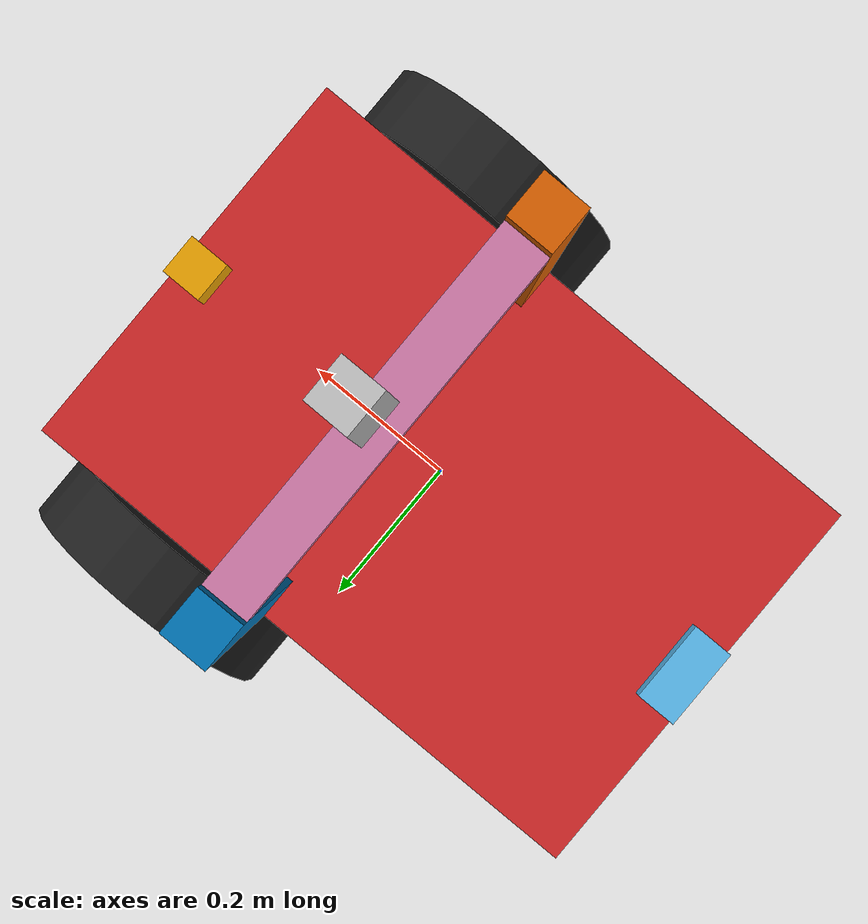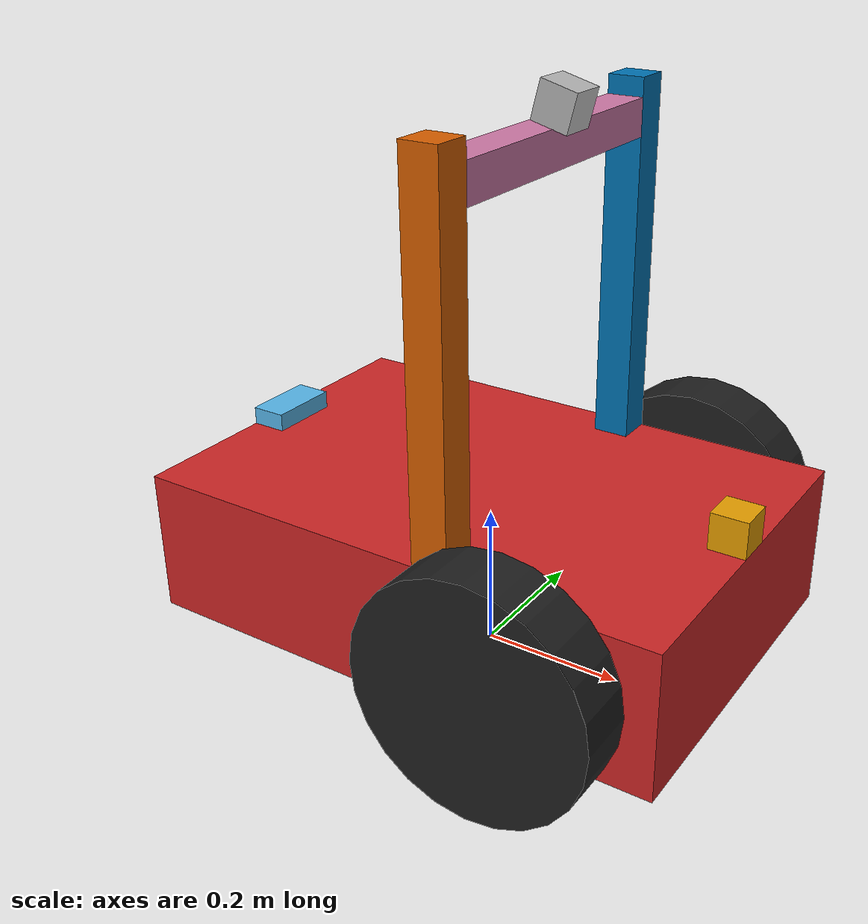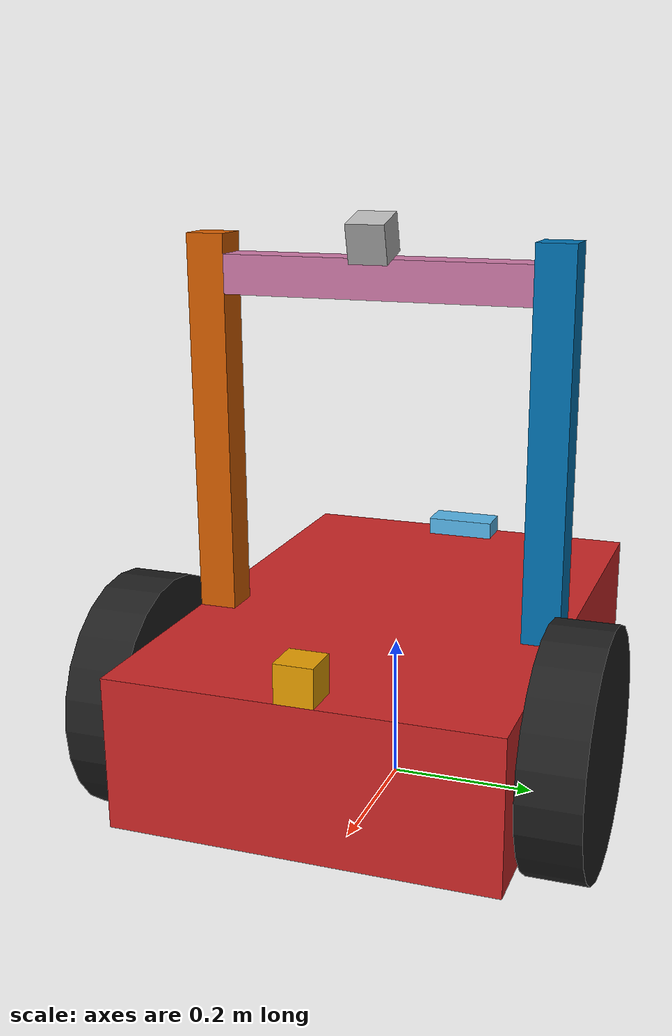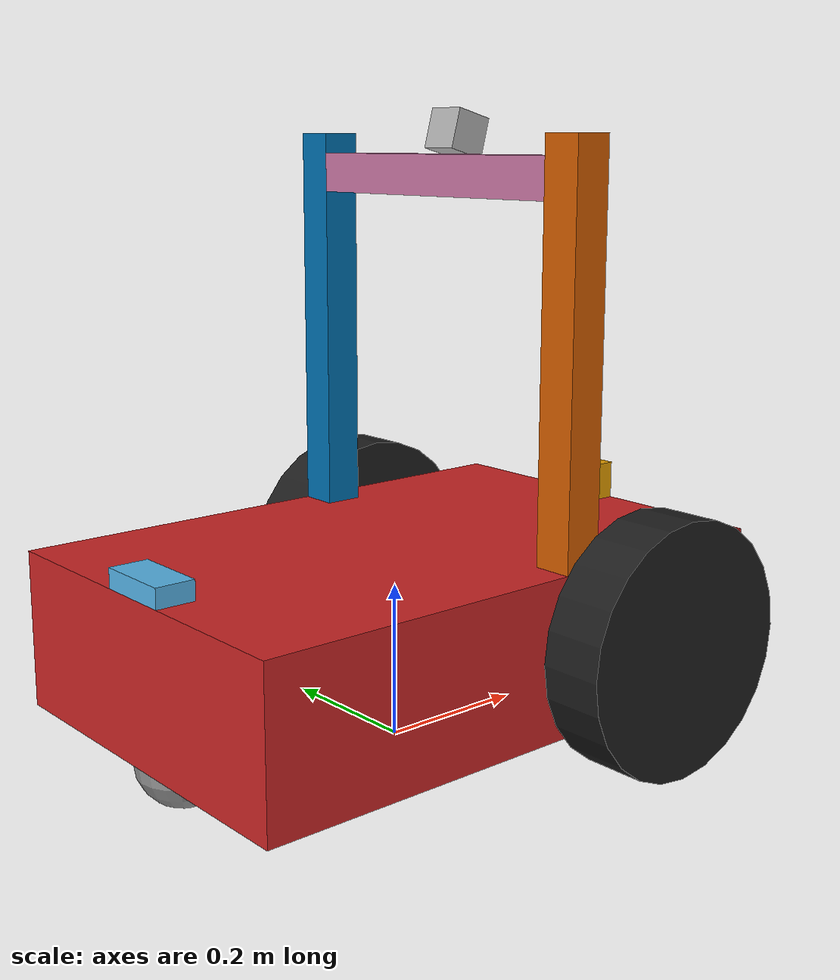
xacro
<?xml version="1.0"?>
<!--
Yeh URDF dynamic hai Koi bhi property ki value change karoge tou bot kutta ban jaiga.
-->
<robot xmlns:xacro="http://www.ros.org/wiki/xacro"  name="ugvbot">

  <xacro:property name="PI" value="3.1415926535897931"/>

  <xacro:property name="chassisHeight" value="0.2"/>
  <xacro:property name="chassisLength" value="0.75"/>
  <xacro:property name="chassisWidth" value="0.5"/>
  <xacro:property name="chassisMass" value="10.0"/>

  <xacro:property name="casterRadius" value="0.06"/> <!--casterRadius = wheelRadius - chassisHeight/2-->
  <xacro:property name="casterMass" value="0.5"/>

  <xacro:property name="wheelWidth" value="0.08"/>
  <xacro:property name="wheelRadius" value="0.16"/>
  <xacro:property name="wheelPos" value="0.20"/> <!--WRT Chassis front-->
  <xacro:property name="wheelMass" value="2.5"/>

  <xacro:property name="mastMass" value="0.1"/>
  <xacro:property name="mastLength" value="0.5"/>
  <xacro:property name="mastCrossection" value="0.05"/>
  <xacro:property name="mastPos" value="0.30"/> <!--WRT Chassis front-->

  <xacro:property name="cameraSize" value="0.05"/>
  <xacro:property name="cameraMass" value="0.01"/>

  <xacro:property name="laserSize" value="0.05"/>
  <xacro:property name="laserMass" value="0.01"/>

  <xacro:property name="imuSize" value="0.05"/> <!--imuSize x 2*imuSize x imuSize/2-->
  <xacro:property name="imuMass" value="0.005"/>

  <xacro:include filename="$(find ugv_bot)/ugvbot_description/urdf/wheels.xacro" />
  <xacro:include filename="$(find ugv_bot)/ugvbot_description/urdf/extras.xacro" />
  <xacro:include filename="$(find ugv_bot)/ugvbot_description/urdf/materials.xacro" />
  <xacro:include filename="$(find ugv_bot)/ugvbot_description/urdf/macros.xacro" />

  <xacro:include filename="$(find ugv_bot)/ugvbot_description/urdf/ugvbot.gazebo" />

  <link name="base_link">
    <collision>
      <origin xyz="0 0 ${wheelRadius}" rpy="0 0 0"/>
      <geometry>
    	  <box size="${chassisLength} ${chassisWidth} ${chassisHeight}"/>
      </geometry>
    </collision>

    <visual>
      <origin xyz="0 0 ${wheelRadius}" rpy="0 0 0"/>
      <geometry>
    	  <box size="${chassisLength} ${chassisWidth} ${chassisHeight}"/>
      </geometry>
    </visual>

    <inertial>
      <origin xyz="0 0 ${wheelRadius}" rpy="0 0 0"/>
      <mass value="${chassisMass}"/>
      <xacro:box_inertia m="${chassisMass}" x="${chassisLength}" y="${chassisWidth}" z="${chassisHeight}"/>
    </inertial>
  </link>

  <!--
    Building Caster
  -->
  <joint name="caster_joint" type="fixed">
    <parent link="base_link"/>
    <child link="caster_wheel"/>
  </joint>

  <link name="caster_wheel">
    <collision>
      <origin xyz="${casterRadius-chassisLength/2} 0 ${casterRadius}" rpy="0 0 0"/>
      <geometry>
    	  <sphere radius="${casterRadius}"/>
      </geometry>
    </collision>

    <visual>
      <origin xyz="${casterRadius-chassisLength/2} 0 ${casterRadius}" rpy="0 0 0"/>
      <geometry>
      	<sphere radius="${casterRadius}"/>
      </geometry>
    </visual>

    <inertial>
      <origin xyz="${casterRadius-chassisLength/2} 0 ${casterRadius}" rpy="0 0 0"/>
      <mass value="${casterMass}"/>
      <xacro:sphere_inertia m="${casterMass}" r="${casterRadius}"/>
    </inertial>
  </link>

  <!--Building Wheels-->
  <xacro:wheel lr="left" tY="1"/>
  <xacro:wheel lr="right" tY="-1"/>

  <!--Building Mast    -->
  <xacro:mast lr="left" tY="1"/>
  <xacro:mast lr="right" tY="-1"/>

  <!--
    Link Rod Between 2 mast ${chassisWidth - 2*mastCrossection}
     -->
	<joint name="mast_link_joint" type="fixed">
		<parent link="right_mast"/>
		<child link="mast_link"/>
		<origin xyz="0 ${mastCrossection} ${mastLength - mastCrossection}"/>
	</joint>

  <link name="mast_link">
    <visual>
      <origin xyz="0 ${chassisWidth/2 - 3*mastCrossection/2} 0" rpy="0 0 0"/>
      <geometry>
      <box size="${mastCrossection} ${chassisWidth - 2*mastCrossection} ${mastCrossection}"/>
      <origin xyz="0 0 0"/>
      </geometry>
    </visual>
    <collision>
      <origin xyz="0 ${chassisWidth/2 - 3*mastCrossection/2} 0.001" rpy="0 0 0"/>
      <geometry>
      <box size="${mastCrossection} ${chassisWidth - 2*mastCrossection} ${mastCrossection}"/>
      </geometry>
    </collision>
    <inertial>
      <mass value="0.5"/>
      <origin xyz="0 ${chassisWidth/2 - 3*mastCrossection/2} 0" rpy="0 0 0"/>
      <mass value="${chassisMass}"/>
      <xacro:box_inertia m="${mastMass}" x="${mastCrossection}" y="${chassisWidth - 2*mastCrossection}" z="${mastCrossection}"/>
    </inertial>
  </link>

  <!--
    Adding Camera to mast link for photo keechne ke liye
  -->

	<joint name="camera_joint" type="fixed">
		<parent link="mast_link"/>
		<child link="camera"/>
    <origin xyz="${mastCrossection/2} ${chassisWidth/2 - 3*mastCrossection/2} ${mastCrossection}" rpy="0 ${PI/12} 0"/>
	</joint>

  <link name="camera">
    <visual>
      <origin xyz="0 0 0" rpy="0 0 0"/>
      <geometry>
        <box size="${cameraSize} ${cameraSize} ${cameraSize}"/>
      </geometry>
    </visual>
    <collision>
      <geometry>
        <box size="${cameraSize} ${cameraSize} ${cameraSize}"/>
      </geometry>
    </collision>
    <inertial>
      <mass value="${cameraMass}"/>
      <xacro:box_inertia m="${cameraMass}" x="${cameraSize}" y="${cameraSize}" z="${cameraSize}"/>
    </inertial>
  </link>

  <!-- The point cloud pose error is displayed in RVIZ, and an empty link and an empty joint are added here to adjust the point cloud tf pose -->
  <!--Used in gazebo reference frame name for plugin-->

  <!--
    Laser Scannner
  -->

  <joint name="laser_joint" type="fixed">
    <origin xyz="${-laserSize/2+chassisLength/2} 0 ${chassisHeight/2+wheelRadius+laserSize/2}" rpy="0 0 0"/>
    <parent link="base_link"/>
    <child link="laser"/>
  </joint>

  <link name="laser">
    <collision>
      <origin xyz="0 0 0" rpy="0 0 0"/>
      <geometry>
	      <box size="${laserSize} ${laserSize} ${laserSize}"/>
      </geometry>
    </collision>

    <visual>
      <origin xyz="0 0 0" rpy="0 0 0"/>
      <geometry>
	      <box size="${laserSize} ${laserSize} ${laserSize}"/>
        <!--IF you want fatties around your bot use HOkuyu lidar Mesh-->
      </geometry>
    </visual>

    <inertial>
      <mass value="${laserMass}" />
      <origin xyz="0 0 0" rpy="0 0 0"/>
      <xacro:box_inertia m="${laserMass}" x="${laserSize}" y="${laserSize}" z="${laserSize}" />
    </inertial>
  </link>

  <!--
    IMU Block
  -->
  <joint name="imu_joint" type="fixed">
    <origin xyz="${-chassisLength/2 + imuSize/2} 0 ${chassisHeight/2 + wheelRadius + imuSize/4}"/>
    <parent link="base_link"/>
    <child link="imu"/>
  </joint>

  <link name="imu">
    <collision>
      <origin xyz="0 0 0" rpy="0 0 0"/>
      <geometry>
	      <box size="${imuSize} ${2*imuSize} ${imuSize/2}"/>
      </geometry>
    </collision>

    <visual>
      <origin xyz="0 0 0" rpy="0 0 0"/>
      <geometry>
	      <box size="${imuSize} ${2*imuSize} ${imuSize/2}"/>
      </geometry>
    </visual>

    <inertial>
      <mass value="${laserMass}" />
      <origin xyz="0 0 0" rpy="0 0 0"/>
      <xacro:box_inertia m="${imuMass}" x="${imuSize}" y="${2*imuSize}" z="${imuSize/2}" />
    </inertial>
  </link>

</robot>

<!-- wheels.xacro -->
<robot xmlns:xacro="http://www.ros.org/wiki/xacro"  name="ugvbot">

  <xacro:macro name="wheel" params="lr tY">
    <link name="${lr}_wheel">
      <collision>
        <origin xyz="0 0 0.0001" rpy="0 ${PI/2} ${PI/2}" />
        <geometry>
          <cylinder length="${wheelWidth}" radius="${wheelRadius}"/>
        </geometry>
      </collision>

      <visual>
        <origin xyz="0 0 0.0001" rpy="0 ${PI/2} ${PI/2}" />
        <geometry>
          <cylinder length="${wheelWidth}" radius="${wheelRadius}"/>
        </geometry>
      </visual>

      <inertial>
        <origin xyz="0 0 0.0001" rpy="0 ${PI/2} ${PI/2}" />
        <mass value="${wheelMass}"/>
        <xacro:cylinder_inertia m="${wheelMass}" r="${wheelRadius}" h="${wheelWidth}"/>
      </inertial>

    </link>

    <gazebo reference="${lr}_wheel">
      <mu1 value="1000.0"/>
      <mu2 value="1000.0"/>
      <kp  value="10000000.0" />
      <kd  value="0.01" />
      <material>Gazebo/Black</material>
    </gazebo>

    <joint name="${lr}_wheel_hinge" type="continuous">
      <parent link="base_link"/>
      <child link="${lr}_wheel"/>
      <origin xyz="${+chassisLength/2 - wheelPos} ${tY*wheelWidth/2+tY*chassisWidth/2} ${wheelRadius}" rpy="0 0 0" />
      <axis xyz="0 1 0" rpy="0 0 0" />
      <erp>0.0</erp>
      <cfm>0.02</cfm>
    </joint>

    <transmission name="${lr}_trans">
      <type>transmission_interface/SimpleTransmission</type>
      <joint name="${lr}_wheel_hinge">
        <hardwareInterface>hardware_interface/VelocityJointInterface</hardwareInterface>
      </joint>
      <actuator name="${lr}Motor">
        <hardwareInterface>VelocityJointInterface</hardwareInterface>
        <mechanicalReduction>1</mechanicalReduction>
      </actuator>
    </transmission>

  </xacro:macro>
</robot>

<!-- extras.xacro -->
<robot xmlns:xacro="http://www.ros.org/wiki/xacro"  name="ugvbot">

  <xacro:macro name="mast" params="lr tY">

    <joint name="${lr}_mast_joint" type="fixed">
      <parent link="base_link"/>
      <child link="${lr}_mast"/>
      <origin xyz="${chassisLength/2 - mastPos} ${tY*(chassisWidth/2-mastCrossection/2)} ${chassisHeight/2+wheelRadius}" rpy="0 0 0" />
    </joint>

    <link name="${lr}_mast">
      <visual>
        <origin xyz="0 0 ${mastLength/2}" rpy="0 0 0"/>
        <geometry>
          <box size="${mastCrossection} ${mastCrossection} ${mastLength}"/>
        </geometry>
      </visual>
      <collision>
        <origin xyz="0 0 ${mastLength/2}" rpy="0 0 0"/>
        <geometry>
          <box size="${mastCrossection} ${mastCrossection} ${mastLength}"/>
        </geometry>
      </collision>
      <inertial>
        <origin xyz="0 0 ${mastPos}" rpy="0 0 0"/>
        <mass value="${mastMass}"/>
        <xacro:box_inertia m="${mastMass}" x="${mastCrossection}" y="${mastCrossection}" z="${mastCrossection}"/>
      </inertial>
    </link>
  </xacro:macro>

</robot>

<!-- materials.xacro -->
<robot xmlns:xacro="http://www.ros.org/wiki/xacro"  name="ugvbot">

  <material name="Black">
    <color rgba="0.0 0.0 0.0 1.0"/>
  </material>

  <material name="Blue">
    <color rgba="0.0 0.0 0.8 1.0"/>
  </material>

  <material name="Green">
    <color rgba="0.0 0.8 0.0 1.0"/>
  </material>

  <material name="Grey">
    <color rgba="0.2 0.2 0.2 1.0"/>
  </material>

  <material name="Orange">
    <color rgba="${255/255} ${108/255} ${10/255} 1.0"/>
  </material>

  <material name="Brown">
    <color rgba="${222/255} ${207/255} ${195/255} 1.0"/>
  </material>

  <material name="Red">
    <color rgba="0.8 0.0 0.0 1.0"/>
  </material>

  <material name="White">
    <color rgba="1.0 1.0 1.0 1.0"/>
  </material>

</robot>

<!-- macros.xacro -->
<robot xmlns:xacro="http://www.ros.org/wiki/xacro"  name="ugvbot">

    <xacro:macro name="cylinder_inertia" params="m r h">
      <inertia  ixx="${m*(3*r*r+h*h)/12}" ixy = "0" ixz = "0"
                iyy="${m*(3*r*r+h*h)/12}" iyz = "0"
                izz="${m*r*r/2}" />
    </xacro:macro>

    <xacro:macro name="box_inertia" params="m x y z">
      <inertia  ixx="${m*(y*y+z*z)/12}" ixy = "0" ixz = "0"
                iyy="${m*(x*x+z*z)/12}" iyz = "0"
                izz="${m*(x*x+z*z)/12}" />
    </xacro:macro>

    <xacro:macro name="sphere_inertia" params="m r">
      <inertia  ixx="${2*m*r*r/5}" ixy = "0" ixz = "0"
                iyy="${2*m*r*r/5}" iyz = "0"
                izz="${2*m*r*r/5}" />
    </xacro:macro>

</robot>
